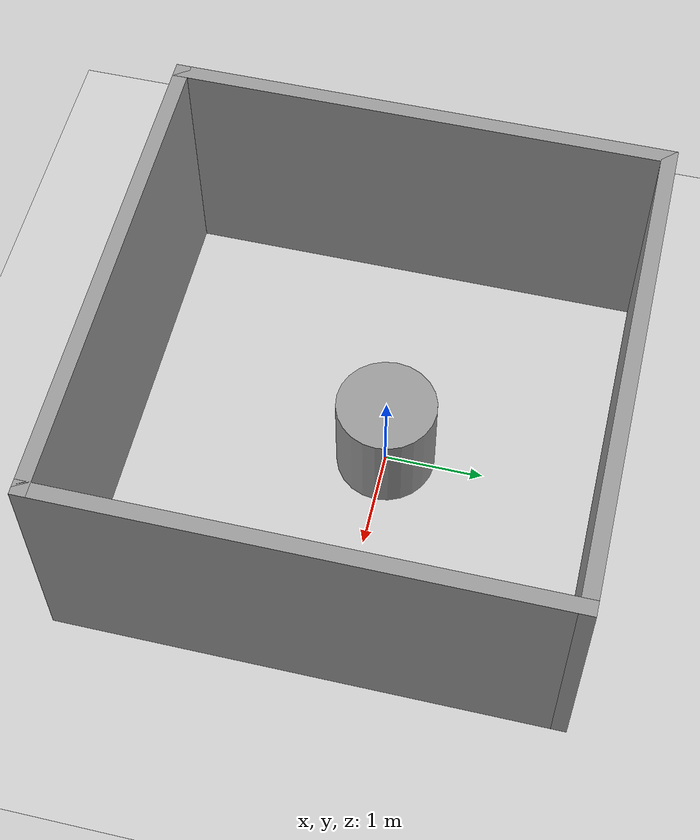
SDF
<sdf version="1.7">
 <world name="default">
  <plugin name="gazebo_occupancy_map" filename="libgazebo_2Dmap_plugin.so">
   <map_resolution>0.01</map_resolution>
   <map_height>0.3</map_height>
   <map_size_x>6</map_size_x>
   <map_size_y>6</map_size_y>
   <init_robot_x>2</init_robot_x>
   <init_robot_y>0</init_robot_y>
  </plugin>
  <light name="sun" type="directional">
   <pose>0 0 10 0 -0 0</pose>
   <diffuse>0.8 0.8 0.8 1</diffuse>
   <specular>0.2 0.2 0.2 1</specular>
   <attenuation>
    <range>1000</range>
    <constant>0.9</constant>
    <linear>0.01</linear>
    <quadratic>0.001</quadratic>
   </attenuation>
   <direction>-0.5 0.1 -0.9</direction>
   <spot><inner_angle>0</inner_angle><outer_angle>0</outer_angle><falloff>0</falloff></spot>
  </light>
  <model name="ground_plane">
   <static>1</static>
   <link name="link">
    <collision name="collision">
     <geometry><plane><normal>0 0 1</normal><size>100 100</size></plane></geometry>
     <surface>
      <contact><collide_bitmask>65535</collide_bitmask></contact>
      <friction><ode><mu>100</mu><mu2>50</mu2></ode></friction>
     </surface>
    </collision>
    <visual name="visual">
     <cast_shadows>0</cast_shadows>
     <geometry><plane><normal>0 0 1</normal><size>100 100</size></plane></geometry>
     <material>
      <script><uri>file://media/materials/scripts/gazebo.material</uri><name>Gazebo/Grey</name></script>
     </material>
    </visual>
   </link>
  </model>
  <gravity>0 0 -9.8</gravity>
  <magnetic_field>6e-06 2.3e-05 -4.2e-05</magnetic_field>
  <atmosphere type="adiabatic"/>
  <physics type="ode">
   <max_step_size>0.001</max_step_size>
   <real_time_factor>1</real_time_factor>
   <real_time_update_rate>1000</real_time_update_rate>
  </physics>
  <scene><ambient>0.4 0.4 0.4 1</ambient><background>0.7 0.7 0.7 1</background><shadows>1</shadows></scene>
  <spherical_coordinates>
   <surface_model>EARTH_WGS84</surface_model>
   <latitude_deg>0</latitude_deg>
   <longitude_deg>0</longitude_deg>
   <elevation>0</elevation>
   <heading_deg>0</heading_deg>
  </spherical_coordinates>
  <model name="bounded5">
   <link name="Wall_1">
    <collision name="Wall_1_Collision">
     <geometry><box><size>5 0.15 2.5</size></box></geometry>
     <pose>0 0 1.25 0 -0 0</pose>
    </collision>
    <visual name="Wall_1_Visual">
     <pose>0 0 1.25 0 -0 0</pose>
     <geometry><box><size>5 0.15 2.5</size></box></geometry>
     <material>
      <script><uri>file://media/materials/scripts/gazebo.material</uri><name>Gazebo/Grey</name></script>
      <ambient>1 1 1 1</ambient>
     </material>
     <meta><layer>0</layer></meta>
    </visual>
    <pose>-2.425 -0.2162 0 0 -0 -1.5708</pose>
   </link>
   <link name="Wall_2">
    <collision name="Wall_2_Collision">
     <geometry><box><size>5 0.15 2.5</size></box></geometry>
     <pose>0 0 1.25 0 -0 0</pose>
    </collision>
    <visual name="Wall_2_Visual">
     <pose>0 0 1.25 0 -0 0</pose>
     <geometry><box><size>5 0.15 2.5</size></box></geometry>
     <material>
      <script><uri>file://media/materials/scripts/gazebo.material</uri><name>Gazebo/Grey</name></script>
      <ambient>1 1 1 1</ambient>
     </material>
     <meta><layer>0</layer></meta>
    </visual>
    <pose>0 -2.6412 0 0 -0 0</pose>
   </link>
   <link name="Wall_3">
    <collision name="Wall_3_Collision">
     <geometry><box><size>5 0.15 2.5</size></box></geometry>
     <pose>0 0 1.25 0 -0 0</pose>
    </collision>
    <visual name="Wall_3_Visual">
     <pose>0 0 1.25 0 -0 0</pose>
     <geometry><box><size>5 0.15 2.5</size></box></geometry>
     <material>
      <script><uri>file://media/materials/scripts/gazebo.material</uri><name>Gazebo/Grey</name></script>
      <ambient>1 1 1 1</ambient>
     </material>
     <meta><layer>0</layer></meta>
    </visual>
    <pose>2.425 -0.2162 0 0 -0 1.5708</pose>
   </link>
   <link name="Wall_4">
    <collision name="Wall_4_Collision">
     <geometry><box><size>5 0.15 2.5</size></box></geometry>
     <pose>0 0 1.25 0 -0 0</pose>
    </collision>
    <visual name="Wall_4_Visual">
     <pose>0 0 1.25 0 -0 0</pose>
     <geometry><box><size>5 0.15 2.5</size></box></geometry>
     <material>
      <script><uri>file://media/materials/scripts/gazebo.material</uri><name>Gazebo/Grey</name></script>
      <ambient>1 1 1 1</ambient>
     </material>
     <meta><layer>0</layer></meta>
    </visual>
    <pose>0 2.2088 0 0 -0 3.14159</pose>
   </link>
   <static>1</static>
  </model>
  <model name="unit_cylinder">
   <link name="link">
    <inertial>
     <mass>1</mass>
     <inertia><ixx>0.145833</ixx><ixy>0</ixy><ixz>0</ixz><iyy>0.145833</iyy><iyz>0</iyz><izz>0.125</izz></inertia>
    </inertial>
    <visual name="visual">
     <geometry><cylinder><radius>0.5</radius><length>1</length></cylinder></geometry>
     <material>
      <script><name>Gazebo/Grey</name><uri>file://media/materials/scripts/gazebo.material</uri></script>
      <shader type="pixel"/>
     </material>
    </visual>
    <collision name="collision">
     <geometry><cylinder><radius>0.5</radius><length>1</length></cylinder></geometry>
     <surface>
      <friction>
       <ode><mu>1</mu><mu2>1</mu2><fdir1>0 0 0</fdir1><slip1>0</slip1><slip2>0</slip2></ode>
       <torsional>
        <coefficient>1</coefficient>
        <patch_radius>0</patch_radius>
        <surface_radius>0</surface_radius>
        <use_patch_radius>1</use_patch_radius>
        <ode><slip>0</slip></ode>
       </torsional>
      </friction>
      <bounce><restitution_coefficient>0</restitution_coefficient><threshold>1e+06</threshold></bounce>
      <contact>
       <collide_without_contact>0</collide_without_contact>
       <collide_without_contact_bitmask>1</collide_without_contact_bitmask>
       <collide_bitmask>1</collide_bitmask>
       <ode>
        <soft_cfm>0</soft_cfm>
        <soft_erp>0.2</soft_erp>
        <kp>1e+13</kp>
        <kd>1</kd>
        <max_vel>0.01</max_vel>
        <min_depth>0</min_depth>
       </ode>
       <bullet>
        <split_impulse>1</split_impulse>
        <split_impulse_penetration_threshold>-0.01</split_impulse_penetration_threshold>
        <soft_cfm>0</soft_cfm>
        <soft_erp>0.2</soft_erp>
        <kp>1e+13</kp>
        <kd>1</kd>
       </bullet>
      </contact>
     </surface>
    </collision>
   </link>
   <static>1</static>
   <pose>-4e-06 4e-06 0.499994 -4e-06 -3e-06 -0</pose>
  </model>
 </world>
</sdf>
